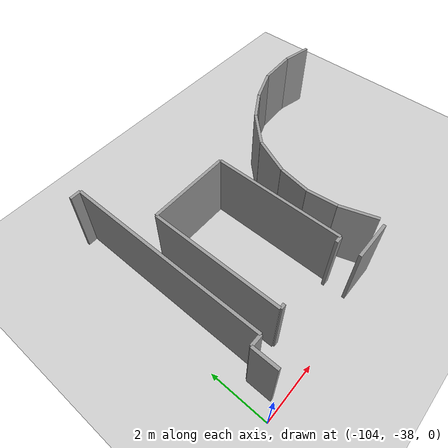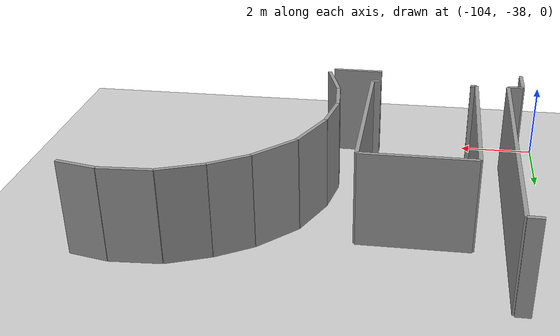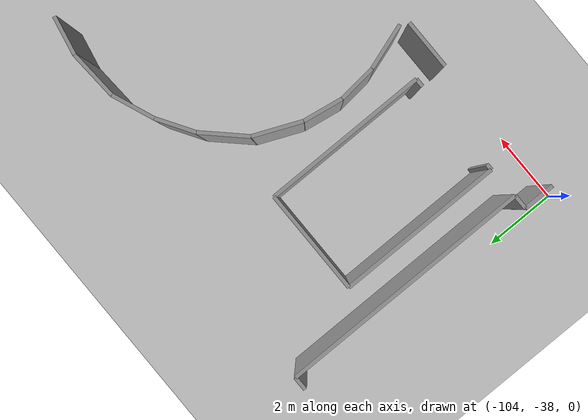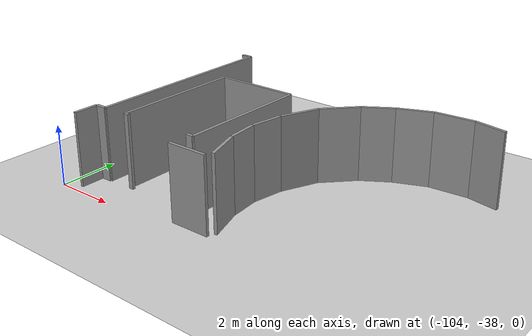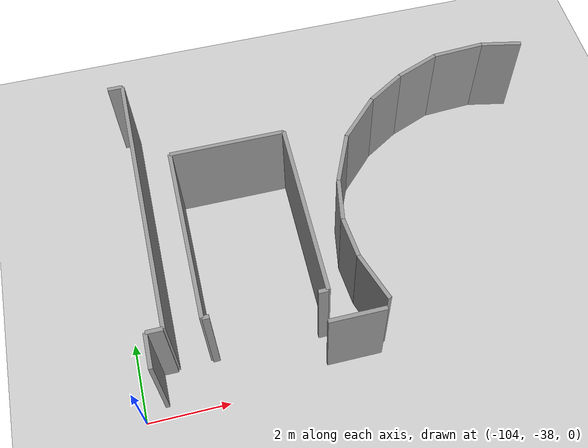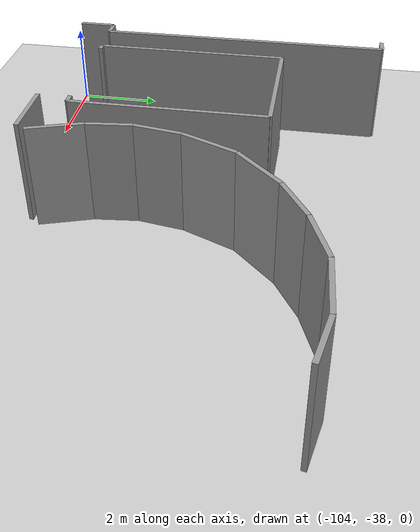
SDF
<sdf version="1.6">
 <world name="default">
  <model name="ground_plane">
   <static>1</static>
   <link name="link">
    <collision name="collision">
     <geometry><plane><normal>0 0 1</normal><size>100 100</size></plane></geometry>
     <surface><friction><ode><mu>100</mu><mu2>50</mu2></ode></friction></surface>
    </collision>
    <visual name="visual">
     <cast_shadows>0</cast_shadows>
     <geometry><plane><normal>0 0 1</normal><size>100 100</size></plane></geometry>
     <material>
      <script><uri>file://media/materials/scripts/gazebo.material</uri><name>Gazebo/Grey</name></script>
     </material>
    </visual>
   </link>
  </model>
  <model name="0510035518_A_40_1_101">
   <static>1</static>
   <link name="Wall_106">
    <collision name="Wall_106_Collision">
     <geometry><box><size>0.373705938393 0.1 2.5</size></box></geometry>
     <pose>0.186852969197 0 1.25 0 0 0</pose>
    </collision>
    <visual name="Wall_106_Visual">
     <pose>0.186852969197 0 1.25 0 0 0</pose>
     <geometry><box><size>0.373705938393 0.1 2.5</size></box></geometry>
     <material>
      <script><uri>file://media/materials/scripts/gazebo.material</uri><name>Gazebo/Grey</name></script>
      <ambient>1 1 1 1</ambient>
     </material>
    </visual>
    <pose>13.3591616386 -98.5879961893 0 0 0 0.0</pose>
   </link>
   <link name="Wall_107">
    <collision name="Wall_107_Collision">
     <geometry><box><size>6.91343283582 0.1 2.5</size></box></geometry>
     <pose>3.45671641791 0 1.25 0 0 0</pose>
    </collision>
    <visual name="Wall_107_Visual">
     <pose>3.45671641791 0 1.25 0 0 0</pose>
     <geometry><box><size>6.91343283582 0.1 2.5</size></box></geometry>
     <material>
      <script><uri>file://media/materials/scripts/gazebo.material</uri><name>Gazebo/Grey</name></script>
      <ambient>1 1 1 1</ambient>
     </material>
    </visual>
    <pose>13.732867577 -98.5879961893 0 0 0 -1.57079632679</pose>
   </link>
   <link name="Wall_108">
    <collision name="Wall_108_Collision">
     <geometry><box><size>0.392251508415 0.1 2.5</size></box></geometry>
     <pose>0.196125754208 0 1.25 0 0 0</pose>
    </collision>
    <visual name="Wall_108_Visual">
     <pose>0.196125754208 0 1.25 0 0 0</pose>
     <geometry><box><size>0.392251508415 0.1 2.5</size></box></geometry>
     <material>
      <script><uri>file://media/materials/scripts/gazebo.material</uri><name>Gazebo/Grey</name></script>
      <ambient>1 1 1 1</ambient>
     </material>
    </visual>
    <pose>13.732867577 -105.501429025 0 0 0 3.14159265359</pose>
   </link>
   <link name="Wall_109">
    <collision name="Wall_109_Collision">
     <geometry><box><size>0.85411241664 0.1 2.5</size></box></geometry>
     <pose>0.42705620832 0 1.25 0 0 0</pose>
    </collision>
    <visual name="Wall_109_Visual">
     <pose>0.42705620832 0 1.25 0 0 0</pose>
     <geometry><box><size>0.85411241664 0.1 2.5</size></box></geometry>
     <material>
      <script><uri>file://media/materials/scripts/gazebo.material</uri><name>Gazebo/Grey</name></script>
      <ambient>1 1 1 1</ambient>
     </material>
    </visual>
    <pose>13.3406160686 -105.501429025 0 0 0 -1.57079632679</pose>
   </link>
   <link name="Wall_115">
    <collision name="Wall_115_Collision">
     <geometry><box><size>1.35966973642 0.1 2.5</size></box></geometry>
     <pose>0.679834868212 0 1.25 0 0 0</pose>
    </collision>
    <visual name="Wall_115_Visual">
     <pose>0.679834868212 0 1.25 0 0 0</pose>
     <geometry><box><size>1.35966973642 0.1 2.5</size></box></geometry>
     <material>
      <script><uri>file://media/materials/scripts/gazebo.material</uri><name>Gazebo/Grey</name></script>
      <ambient>1 1 1 1</ambient>
     </material>
    </visual>
    <pose>17.243823436 -106.198539219 0 0 0 0.0</pose>
   </link>
   <link name="Wall_129">
    <collision name="Wall_129_Collision">
     <geometry><box><size>2.85246109876 0.1 2.5</size></box></geometry>
     <pose>1.42623054938 0 1.25 0 0 0</pose>
    </collision>
    <visual name="Wall_129_Visual">
     <pose>1.42623054938 0 1.25 0 0 0</pose>
     <geometry><box><size>2.85246109876 0.1 2.5</size></box></geometry>
     <material>
      <script><uri>file://media/materials/scripts/gazebo.material</uri><name>Gazebo/Grey</name></script>
      <ambient>1 1 1 1</ambient>
     </material>
    </visual>
    <pose>14.5895204827 -100.981644967 0 0 0 0.0</pose>
   </link>
   <link name="Wall_130">
    <collision name="Wall_130_Collision">
     <geometry><box><size>4.47735789139 0.1 2.5</size></box></geometry>
     <pose>2.2386789457 0 1.25 0 0 0</pose>
    </collision>
    <visual name="Wall_130_Visual">
     <pose>2.2386789457 0 1.25 0 0 0</pose>
     <geometry><box><size>4.47735789139 0.1 2.5</size></box></geometry>
     <material>
      <script><uri>file://media/materials/scripts/gazebo.material</uri><name>Gazebo/Grey</name></script>
      <ambient>1 1 1 1</ambient>
     </material>
    </visual>
    <pose>17.4419815815 -100.981644967 0 0 0 -1.57079632679</pose>
   </link>
   <link name="Wall_131">
    <collision name="Wall_131_Collision">
     <geometry><box><size>0.231184503017 0.1 2.5</size></box></geometry>
     <pose>0.115592251508 0 1.25 0 0 0</pose>
    </collision>
    <visual name="Wall_131_Visual">
     <pose>0.115592251508 0 1.25 0 0 0</pose>
     <geometry><box><size>0.231184503017 0.1 2.5</size></box></geometry>
     <material>
      <script><uri>file://media/materials/scripts/gazebo.material</uri><name>Gazebo/Grey</name></script>
      <ambient>1 1 1 1</ambient>
     </material>
    </visual>
    <pose>17.4419815815 -105.459002858 0 0 0 3.14159265359</pose>
   </link>
   <link name="Wall_132">
    <collision name="Wall_132_Collision">
     <geometry><box><size>0.165893934582 0.1 2.5</size></box></geometry>
     <pose>0.0829469672912 0 1.25 0 0 0</pose>
    </collision>
    <visual name="Wall_132_Visual">
     <pose>0.0829469672912 0 1.25 0 0 0</pose>
     <geometry><box><size>0.165893934582 0.1 2.5</size></box></geometry>
     <material>
      <script><uri>file://media/materials/scripts/gazebo.material</uri><name>Gazebo/Grey</name></script>
      <ambient>1 1 1 1</ambient>
     </material>
    </visual>
    <pose>14.7554144173 -105.459002858 0 0 0 3.14159265359</pose>
   </link>
   <link name="Wall_133">
    <collision name="Wall_133_Collision">
     <geometry><box><size>4.47735789139 0.1 2.5</size></box></geometry>
     <pose>2.2386789457 0 1.25 0 0 0</pose>
    </collision>
    <visual name="Wall_133_Visual">
     <pose>2.2386789457 0 1.25 0 0 0</pose>
     <geometry><box><size>4.47735789139 0.1 2.5</size></box></geometry>
     <material>
      <script><uri>file://media/materials/scripts/gazebo.material</uri><name>Gazebo/Grey</name></script>
      <ambient>1 1 1 1</ambient>
     </material>
    </visual>
    <pose>14.5895204827 -105.459002858 0 0 0 1.57079632679</pose>
   </link>
   <link name="Wall_134">
    <collision name="Wall_134_Collision">
     <geometry><box><size>1.02847035635 0.1 2.5</size></box></geometry>
     <pose>0.514235178177 0 1.25 0 0 0</pose>
    </collision>
    <visual name="Wall_134_Visual">
     <pose>0.514235178177 0 1.25 0 0 0</pose>
     <geometry><box><size>1.02847035635 0.1 2.5</size></box></geometry>
     <material>
      <script><uri>file://media/materials/scripts/gazebo.material</uri><name>Gazebo/Grey</name></script>
      <ambient>1 1 1 1</ambient>
     </material>
    </visual>
    <pose>18.3204826929 -104.797967609 0 0 0 1.66852323415</pose>
   </link>
   <link name="Wall_135">
    <collision name="Wall_135_Collision">
     <geometry><box><size>1.08481404796 0.1 2.5</size></box></geometry>
     <pose>0.542407023978 0 1.25 0 0 0</pose>
    </collision>
    <visual name="Wall_135_Visual">
     <pose>0.542407023978 0 1.25 0 0 0</pose>
     <geometry><box><size>1.08481404796 0.1 2.5</size></box></geometry>
     <material>
      <script><uri>file://media/materials/scripts/gazebo.material</uri><name>Gazebo/Grey</name></script>
      <ambient>1 1 1 1</ambient>
     </material>
    </visual>
    <pose>18.2201333757 -103.774404573 0 0 0 1.40564764938</pose>
   </link>
   <link name="Wall_136">
    <collision name="Wall_136_Collision">
     <geometry><box><size>1.32826587692 0.1 2.5</size></box></geometry>
     <pose>0.664132938458 0 1.25 0 0 0</pose>
    </collision>
    <visual name="Wall_136_Visual">
     <pose>0.664132938458 0 1.25 0 0 0</pose>
     <geometry><box><size>1.32826587692 0.1 2.5</size></box></geometry>
     <material>
      <script><uri>file://media/materials/scripts/gazebo.material</uri><name>Gazebo/Grey</name></script>
      <ambient>1 1 1 1</ambient>
     </material>
    </visual>
    <pose>18.3984757066 -102.704350587 0 0 0 1.16268992503</pose>
   </link>
   <link name="Wall_137">
    <collision name="Wall_137_Collision">
     <geometry><box><size>1.32941645864 0.1 2.5</size></box></geometry>
     <pose>0.664708229322 0 1.25 0 0 0</pose>
    </collision>
    <visual name="Wall_137_Visual">
     <pose>0.664708229322 0 1.25 0 0 0</pose>
     <geometry><box><size>1.32941645864 0.1 2.5</size></box></geometry>
     <material>
      <script><uri>file://media/materials/scripts/gazebo.material</uri><name>Gazebo/Grey</name></script>
      <ambient>1 1 1 1</ambient>
     </material>
    </visual>
    <pose>18.9256271832 -101.485169895 0 0 0 0.805263099649</pose>
   </link>
   <link name="Wall_138">
    <collision name="Wall_138_Collision">
     <geometry><box><size>1.07409641517 0.1 2.5</size></box></geometry>
     <pose>0.537048207586 0 1.25 0 0 0</pose>
    </collision>
    <visual name="Wall_138_Visual">
     <pose>0.537048207586 0 1.25 0 0 0</pose>
     <geometry><box><size>1.07409641517 0.1 2.5</size></box></geometry>
     <material>
      <script><uri>file://media/materials/scripts/gazebo.material</uri><name>Gazebo/Grey</name></script>
      <ambient>1 1 1 1</ambient>
     </material>
    </visual>
    <pose>19.8468085106 -100.526643379 0 0 0 0.56005345863</pose>
   </link>
   <link name="Wall_139">
    <collision name="Wall_139_Collision">
     <geometry><box><size>1.17326289136 0.1 2.5</size></box></geometry>
     <pose>0.586631445682 0 1.25 0 0 0</pose>
    </collision>
    <visual name="Wall_139_Visual">
     <pose>0.586631445682 0 1.25 0 0 0</pose>
     <geometry><box><size>1.17326289136 0.1 2.5</size></box></geometry>
     <material>
      <script><uri>file://media/materials/scripts/gazebo.material</uri><name>Gazebo/Grey</name></script>
      <ambient>1 1 1 1</ambient>
     </material>
    </visual>
    <pose>20.7568116862 -99.9560495395 0 0 0 0.378134045415</pose>
   </link>
   <link name="Wall_140">
    <collision name="Wall_140_Collision">
     <geometry><box><size>1.32953384314 0.1 2.5</size></box></geometry>
     <pose>0.664766921568 0 1.25 0 0 0</pose>
    </collision>
    <visual name="Wall_140_Visual">
     <pose>0.664766921568 0 1.25 0 0 0</pose>
     <geometry><box><size>1.32953384314 0.1 2.5</size></box></geometry>
     <material>
      <script><uri>file://media/materials/scripts/gazebo.material</uri><name>Gazebo/Grey</name></script>
      <ambient>1 1 1 1</ambient>
     </material>
    </visual>
    <pose>21.847189584 -99.5228961575 0 0 0 0.0565902310113</pose>
   </link>
   <link name="Wall_141">
    <collision name="Wall_141_Collision">
     <geometry><box><size>1.05184214302 0.1 2.5</size></box></geometry>
     <pose>0.52592107151 0 1.25 0 0 0</pose>
    </collision>
    <visual name="Wall_141_Visual">
     <pose>0.52592107151 0 1.25 0 0 0</pose>
     <geometry><box><size>1.05184214302 0.1 2.5</size></box></geometry>
     <material>
      <script><uri>file://media/materials/scripts/gazebo.material</uri><name>Gazebo/Grey</name></script>
      <ambient>1 1 1 1</ambient>
     </material>
    </visual>
    <pose>23.1745951096 -99.4476976818 0 0 0 -0.2045481071</pose>
   </link>
   <link name="Wall_153">
    <collision name="Wall_153_Collision">
     <geometry><box><size>1.25906047526 0.1 2.5</size></box></geometry>
     <pose>0.629530237631 0 1.25 0 0 0</pose>
    </collision>
    <visual name="Wall_153_Visual">
     <pose>0.629530237631 0 1.25 0 0 0</pose>
     <geometry><box><size>1.25906047526 0.1 2.5</size></box></geometry>
     <material>
      <script><uri>file://media/materials/scripts/gazebo.material</uri><name>Gazebo/Grey</name></script>
      <ambient>1 1 1 1</ambient>
     </material>
    </visual>
    <pose>18.7129882502 -105.9942839 0 0 0 1.88782511945</pose>
   </link>
   <pose>-116.8 68.630612893 0 0 0 0</pose>
  </model>
 </world>
</sdf>
